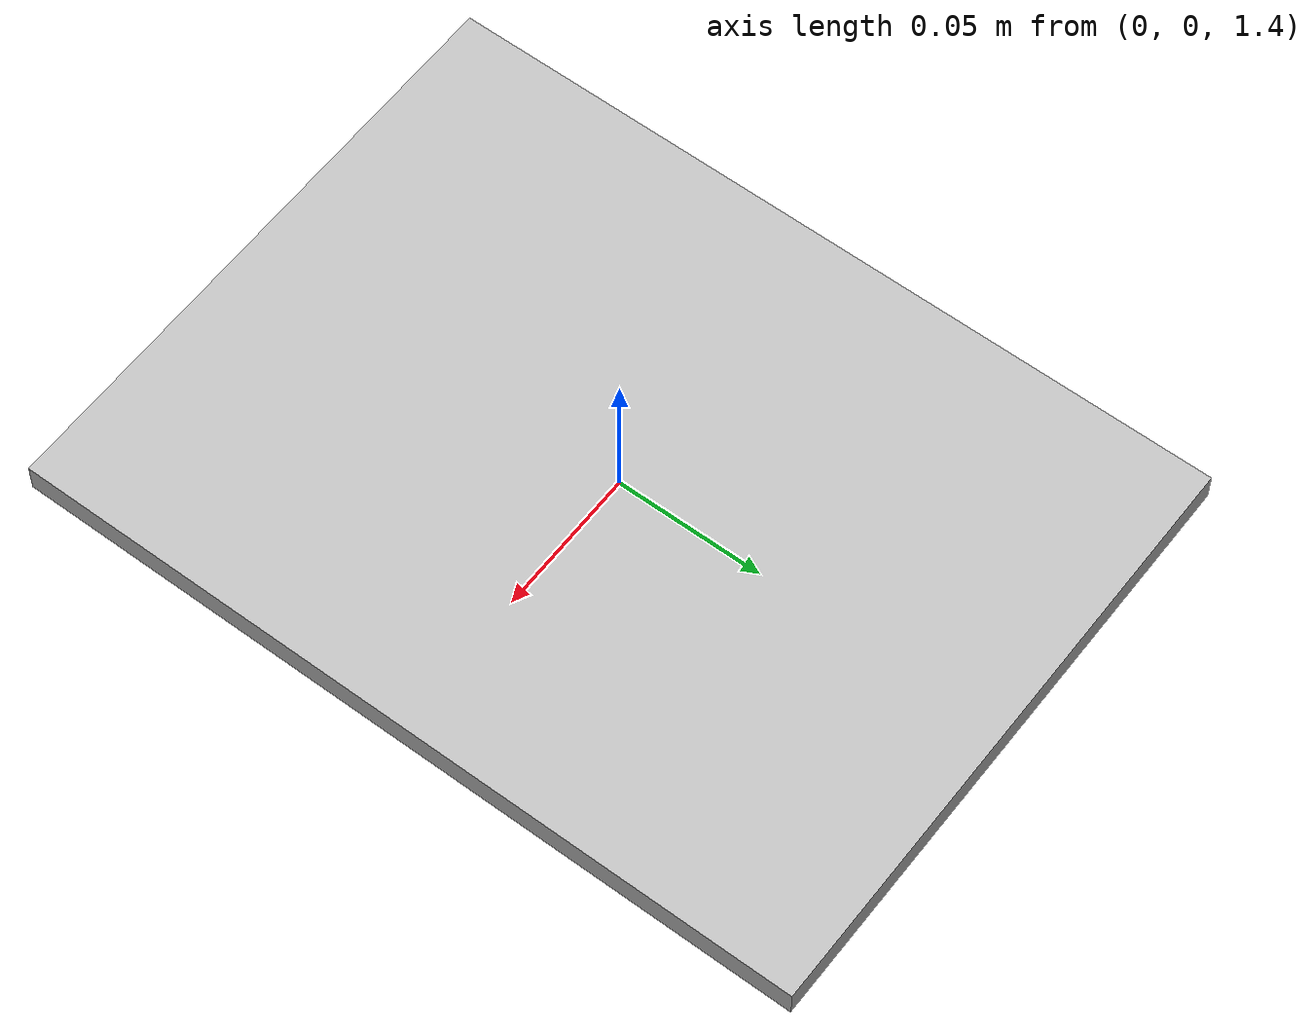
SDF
<?xml version="1.0" ?>
<sdf version="1.6">
 <world name="default">
    <include>
      <uri>model://ground_plane</uri>
    </include>
    <include>
      <uri>model://sun</uri>
    </include>

  <model name='Calibration'>
    <pose frame=''>0 0 1.4 0 0 0</pose>

    <include>
      <uri>model://qr_code_calibration</uri>
      <pose>0 0 0 0 0 0</pose>
    </include>

    <static>1</static>
  </model>
 </world>
</sdf>

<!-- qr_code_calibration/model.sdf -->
<sdf version="1.4">
  <model name="qr_code_calibration">
   <link name="qr_code_calibration">
      <pose>0 0 0 0 0 0</pose>
      <collision name="collision">
        <geometry>
            <box>
            <size>0.2032 0.27093333333 0.01</size>
          </box>
        </geometry>
      </collision>
      <visual name="visual">
        <geometry>
          <box>
            <size>0.2032 0.27093333333 0.01</size>
          </box>
        </geometry>
        <material>
		  <script>
            <uri>model://qr_code_calibration/materials/scripts/qr_calibration.material</uri>
            <uri>model://qr_code_calibration/materials/textures/qr_calibration.png</uri>
            <name>qr_calibration/Image</name>
          </script>
        </material>
      </visual>
    </link>

  </model>
</sdf>
